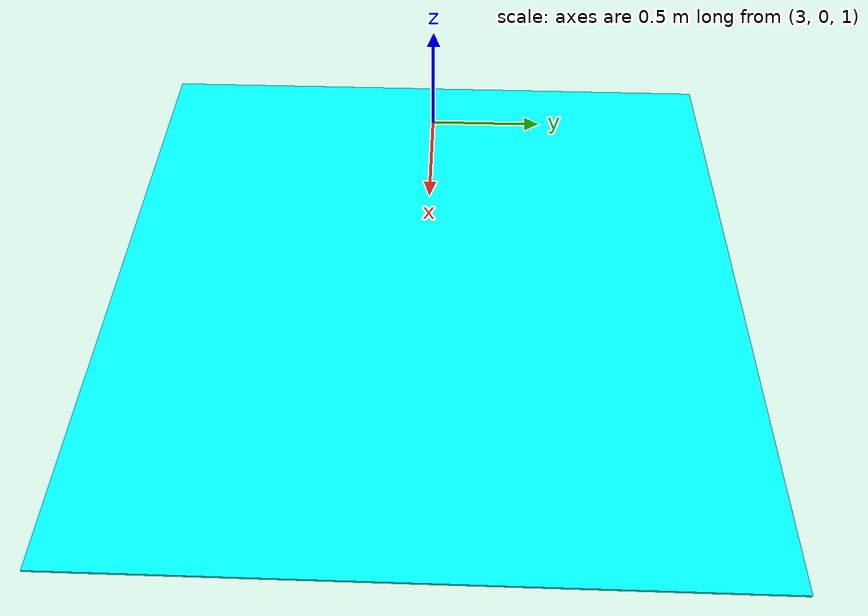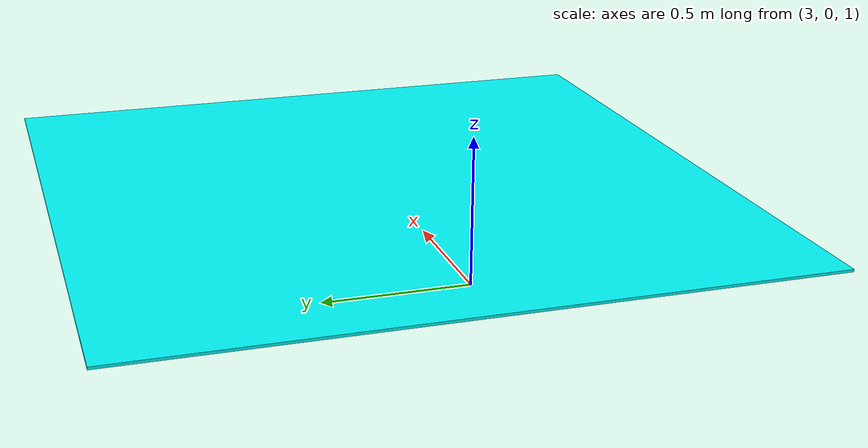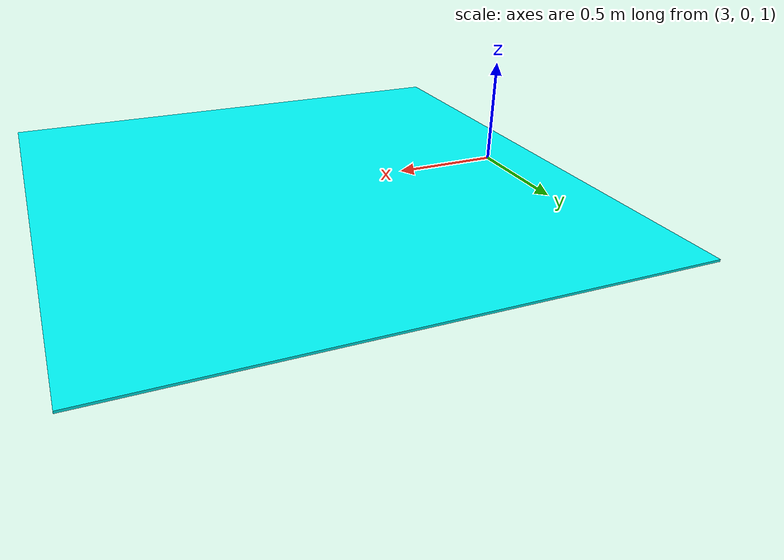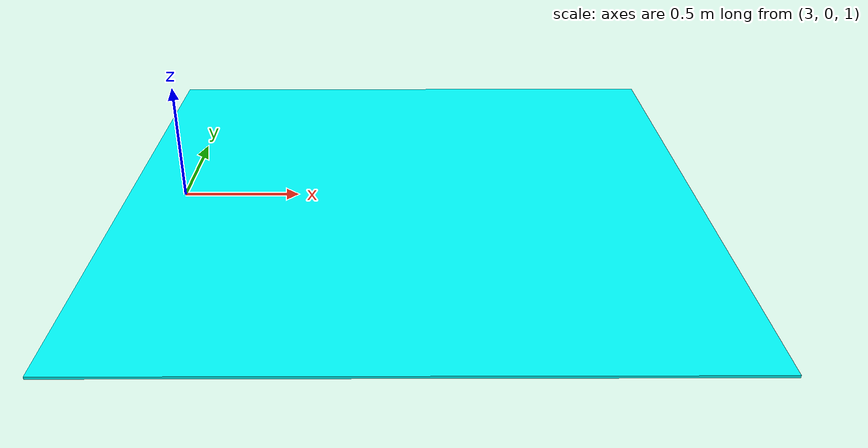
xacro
<?xml version="1.0"?>

<robot name="myfirst1" xmlns:xacro="http://www.ros.org/wiki/xacro">
   <material name="green">
    <color rgba="0 0.8 0 1"/>
  </material>

<link name="slope">
   <inertial>
     <origin xyz="4 0 2" rpy="0 0 0"/>
     <mass value="10"/>
     <inertia ixx="0.01"  ixy="0"  ixz="0" iyy="0.01" iyz="0" izz="0.01" />
   </inertial>

   <visual>
     <origin xyz="4 0 1" rpy="0 0 0" />
     <geometry>
       <box size="2.5 2.5 0.01" />
     </geometry>
     <material name="Cyan">
       <color rgba="0 1.0 1.0 1.0"/>
     </material>
   </visual>

   <collision>
    <origin xyz="4 0 1" rpy="0 0 0"/>
    <geometry>
       <box size="2.5 2.5 0.1" />
     </geometry>
     <surface>
            <friction>
              <ode>
                <mu>1000000</mu>
                <mu2>1000000</mu2>
                <kp value="1000" />
                <kd value="100" />
              </ode>
            </friction>
          </surface>
   </collision>
 </link>

  <gazebo reference="slope">
    <material>Gazebo/Red</material>
 </gazebo>

</robot>
